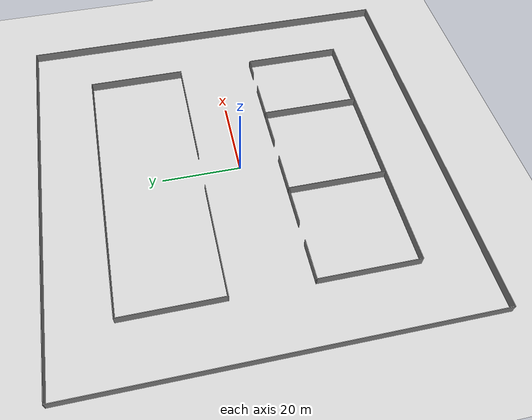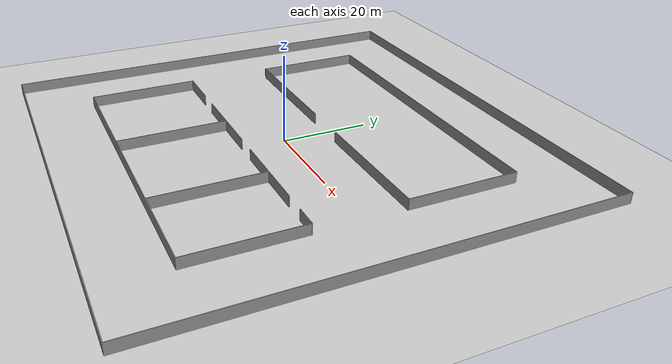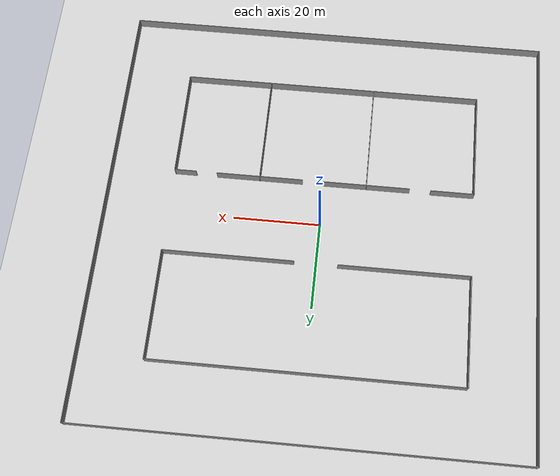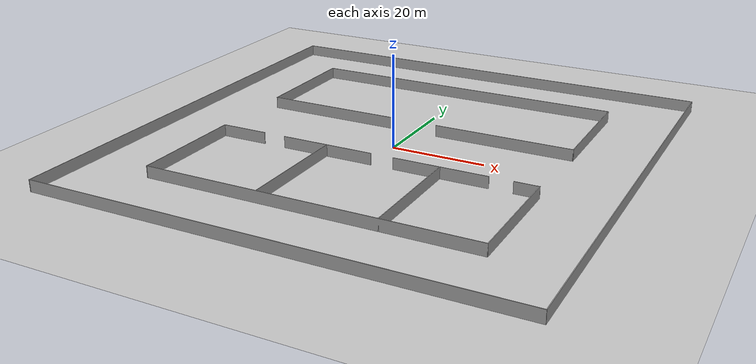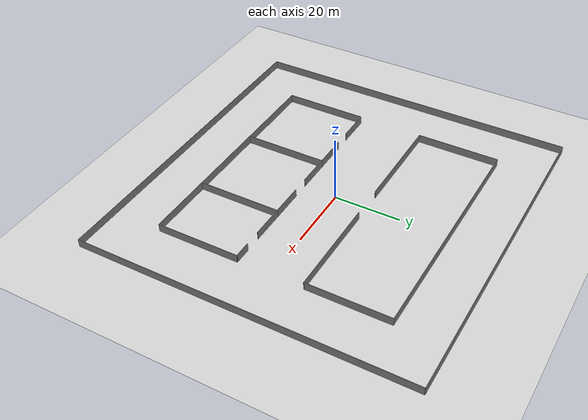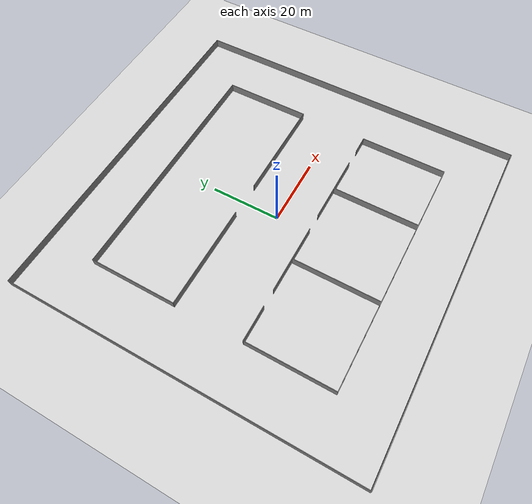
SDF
<sdf version="1.6">
 <world name="default">
  <physics type="ode">
   <max_step_size>0.001000</max_step_size>
   <real_time_factor>1.000000</real_time_factor>
   <real_time_update_rate>1000.000000</real_time_update_rate>
  </physics>
  <light name="sun" type="directional">
   <pose>0 0 10 0 -0 0</pose>
   <diffuse>0.8 0.8 0.8 1</diffuse>
   <specular>0.2 0.2 0.2 1</specular>
   <attenuation>
    <range>1000</range>
    <constant>0.9</constant>
    <linear>0.01</linear>
    <quadratic>0.001</quadratic>
   </attenuation>
   <direction>-0.5 0.1 -0.9</direction>
  </light>
  <model name="ground_plane">
   <static>1</static>
   <link name="link">
    <collision name="collision">
     <geometry><plane><normal>0 0 1</normal><size>100 100</size></plane></geometry>
     <surface>
      <contact><collide_bitmask>65535</collide_bitmask></contact>
      <friction><ode><mu>100</mu><mu2>50</mu2></ode></friction>
     </surface>
    </collision>
    <visual name="visual">
     <cast_shadows>0</cast_shadows>
     <geometry><plane><normal>0 0 1</normal><size>100 100</size></plane></geometry>
     <material>
      <script><uri>file://media/materials/scripts/gazebo.material</uri><name>Gazebo/Grey</name></script>
     </material>
    </visual>
   </link>
  </model>
  <gravity>0 0 -9.8</gravity>
  <magnetic_field>6e-06 2.3e-05 -4.2e-05</magnetic_field>
  <atmosphere type="adiabatic"/>
  <physics name="default_physics" default="0" type="ode">
   <max_step_size>0.001</max_step_size>
   <real_time_factor>1</real_time_factor>
   <real_time_update_rate>1000</real_time_update_rate>
  </physics>
  <scene><ambient>0.4 0.4 0.4 1</ambient><background>0.7 0.7 0.7 1</background><shadows>1</shadows></scene>
  <spherical_coordinates>
   <surface_model>EARTH_WGS84</surface_model>
   <latitude_deg>0</latitude_deg>
   <longitude_deg>0</longitude_deg>
   <elevation>0</elevation>
   <heading_deg>0</heading_deg>
  </spherical_coordinates>
  <model name="floor100x100">
   <link name="Wall_10">
    <collision name="Wall_10_Collision">
     <geometry><box><size>100.15 0.15 2.5</size></box></geometry>
     <pose>0 0 1.25 0 -0 0</pose>
    </collision>
    <visual name="Wall_10_Visual">
     <pose>0 0 1.25 0 -0 0</pose>
     <geometry><box><size>100.15 0.15 2.5</size></box></geometry>
     <material>
      <script><uri>file://media/materials/scripts/gazebo.material</uri><name>Gazebo/Grey</name></script>
      <ambient>1 1 1 1</ambient>
     </material>
     <meta><layer>0</layer></meta>
    </visual>
    <pose>0 -50 0 0 -0 0</pose>
   </link>
   <link name="Wall_11">
    <collision name="Wall_11_Collision">
     <geometry><box><size>100.15 0.15 2.5</size></box></geometry>
     <pose>0 0 1.25 0 -0 0</pose>
    </collision>
    <visual name="Wall_11_Visual">
     <pose>0 0 1.25 0 -0 0</pose>
     <geometry><box><size>100.15 0.15 2.5</size></box></geometry>
     <material>
      <script><uri>file://media/materials/scripts/gazebo.material</uri><name>Gazebo/Grey</name></script>
      <ambient>1 1 1 1</ambient>
     </material>
     <meta><layer>0</layer></meta>
    </visual>
    <pose>50 0 0 0 -0 1.5708</pose>
   </link>
   <link name="Wall_18">
    <collision name="Wall_18_Collision">
     <geometry><box><size>70.15 0.15 2.5</size></box></geometry>
     <pose>0 0 1.25 0 -0 0</pose>
    </collision>
    <visual name="Wall_18_Visual">
     <pose>0 0 1.25 0 -0 0</pose>
     <geometry><box><size>70.15 0.15 2.5</size></box></geometry>
     <material>
      <script><uri>file://media/materials/scripts/gazebo.material</uri><name>Gazebo/Grey</name></script>
      <ambient>1 1 1 1</ambient>
     </material>
     <meta><layer>0</layer></meta>
    </visual>
    <pose>0 35 0 0 -0 0</pose>
   </link>
   <link name="Wall_19">
    <collision name="Wall_19_Collision">
     <geometry><box><size>25.15 0.15 2.5</size></box></geometry>
     <pose>0 0 1.25 0 -0 0</pose>
    </collision>
    <visual name="Wall_19_Visual">
     <pose>0 0 1.25 0 -0 0</pose>
     <geometry><box><size>25.15 0.15 2.5</size></box></geometry>
     <material>
      <script><uri>file://media/materials/scripts/gazebo.material</uri><name>Gazebo/Grey</name></script>
      <ambient>1 1 1 1</ambient>
     </material>
     <meta><layer>0</layer></meta>
    </visual>
    <pose>35 22.5 0 0 -0 -1.5708</pose>
   </link>
   <link name="Wall_21">
    <collision name="Wall_21_Collision">
     <geometry><box><size>25.15 0.15 2.5</size></box></geometry>
     <pose>0 0 1.25 0 -0 0</pose>
    </collision>
    <visual name="Wall_21_Visual">
     <pose>0 0 1.25 0 -0 0</pose>
     <geometry><box><size>25.15 0.15 2.5</size></box></geometry>
     <material>
      <script><uri>file://media/materials/scripts/gazebo.material</uri><name>Gazebo/Grey</name></script>
      <ambient>1 1 1 1</ambient>
     </material>
     <meta><layer>0</layer></meta>
    </visual>
    <pose>-35 22.5 0 0 -0 1.5708</pose>
   </link>
   <link name="Wall_27">
    <collision name="Wall_27_Collision">
     <geometry><box><size>30.15 0.15 2.5</size></box></geometry>
     <pose>0 0 1.25 0 -0 0</pose>
    </collision>
    <visual name="Wall_27_Visual">
     <pose>0 0 1.25 0 -0 0</pose>
     <geometry><box><size>30.15 0.15 2.5</size></box></geometry>
     <material>
      <script><uri>file://media/materials/scripts/gazebo.material</uri><name>Gazebo/Grey</name></script>
      <ambient>1 1 1 1</ambient>
     </material>
     <meta><layer>0</layer></meta>
    </visual>
    <pose>-20 10 0 0 -0 0</pose>
   </link>
   <link name="Wall_29">
    <collision name="Wall_29_Collision">
     <geometry><box><size>30.15 0.15 2.5</size></box></geometry>
     <pose>0 0 1.25 0 -0 0</pose>
    </collision>
    <visual name="Wall_29_Visual">
     <pose>0 0 1.25 0 -0 0</pose>
     <geometry><box><size>30.15 0.15 2.5</size></box></geometry>
     <material>
      <script><uri>file://media/materials/scripts/gazebo.material</uri><name>Gazebo/Grey</name></script>
      <ambient>1 1 1 1</ambient>
     </material>
     <meta><layer>0</layer></meta>
    </visual>
    <pose>20 10 0 0 -0 0</pose>
   </link>
   <link name="Wall_33">
    <collision name="Wall_33_Collision">
     <geometry><box><size>70.15 0.15 2.5</size></box></geometry>
     <pose>0 0 1.25 0 -0 0</pose>
    </collision>
    <visual name="Wall_33_Visual">
     <pose>0 0 1.25 0 -0 0</pose>
     <geometry><box><size>70.15 0.15 2.5</size></box></geometry>
     <material>
      <script><uri>file://media/materials/scripts/gazebo.material</uri><name>Gazebo/Grey</name></script>
      <ambient>1 1 1 1</ambient>
     </material>
     <meta><layer>0</layer></meta>
    </visual>
    <pose>0 -35 0 0 -0 0</pose>
   </link>
   <link name="Wall_34">
    <collision name="Wall_34_Collision">
     <geometry><box><size>25.15 0.15 2.5</size></box></geometry>
     <pose>0 0 1.25 0 -0 0</pose>
    </collision>
    <visual name="Wall_34_Visual">
     <pose>0 0 1.25 0 -0 0</pose>
     <geometry><box><size>25.15 0.15 2.5</size></box></geometry>
     <material>
      <script><uri>file://media/materials/scripts/gazebo.material</uri><name>Gazebo/Grey</name></script>
      <ambient>1 1 1 1</ambient>
     </material>
     <meta><layer>0</layer></meta>
    </visual>
    <pose>35 -22.5 0 0 -0 1.5708</pose>
   </link>
   <link name="Wall_36">
    <collision name="Wall_36_Collision">
     <geometry><box><size>25.15 0.15 2.5</size></box></geometry>
     <pose>0 0 1.25 0 -0 0</pose>
    </collision>
    <visual name="Wall_36_Visual">
     <pose>0 0 1.25 0 -0 0</pose>
     <geometry><box><size>25.15 0.15 2.5</size></box></geometry>
     <material>
      <script><uri>file://media/materials/scripts/gazebo.material</uri><name>Gazebo/Grey</name></script>
      <ambient>1 1 1 1</ambient>
     </material>
     <meta><layer>0</layer></meta>
    </visual>
    <pose>-35 -22.5 0 0 -0 -1.5708</pose>
   </link>
   <link name="Wall_50">
    <collision name="Wall_50_Collision">
     <geometry><box><size>10.15 0.15 2.5</size></box></geometry>
     <pose>0 0 1.25 0 -0 0</pose>
    </collision>
    <visual name="Wall_50_Visual">
     <pose>0 0 1.25 0 -0 0</pose>
     <geometry><box><size>10.15 0.15 2.5</size></box></geometry>
     <material>
      <script><uri>file://media/materials/scripts/gazebo.material</uri><name>Gazebo/Grey</name></script>
      <ambient>1 1 1 1</ambient>
     </material>
     <meta><layer>0</layer></meta>
    </visual>
    <pose>-30 -10 0 0 -0 0</pose>
   </link>
   <link name="Wall_52">
    <collision name="Wall_52_Collision">
     <geometry><box><size>10.15 0.15 2.5</size></box></geometry>
     <pose>0 0 1.25 0 -0 0</pose>
    </collision>
    <visual name="Wall_52_Visual">
     <pose>0 0 1.25 0 -0 0</pose>
     <geometry><box><size>10.15 0.15 2.5</size></box></geometry>
     <material>
      <script><uri>file://media/materials/scripts/gazebo.material</uri><name>Gazebo/Grey</name></script>
      <ambient>1 1 1 1</ambient>
     </material>
     <meta><layer>0</layer></meta>
    </visual>
    <pose>-15 -10 0 0 -0 0</pose>
   </link>
   <link name="Wall_53">
    <collision name="Wall_53_Collision">
     <geometry><box><size>25.15 0.15 2.5</size></box></geometry>
     <pose>0 0 1.25 0 -0 0</pose>
    </collision>
    <visual name="Wall_53_Visual">
     <pose>0 0 1.25 0 -0 0</pose>
     <geometry><box><size>25.15 0.15 2.5</size></box></geometry>
     <material>
      <script><uri>file://media/materials/scripts/gazebo.material</uri><name>Gazebo/Grey</name></script>
      <ambient>1 1 1 1</ambient>
     </material>
     <meta><layer>0</layer></meta>
    </visual>
    <pose>-10 -22.5 0 0 -0 -1.5708</pose>
   </link>
   <link name="Wall_55">
    <collision name="Wall_55_Collision">
     <geometry><box><size>10.15 0.15 2.5</size></box></geometry>
     <pose>0 0 1.25 0 -0 0</pose>
    </collision>
    <visual name="Wall_55_Visual">
     <pose>0 0 1.25 0 -0 0</pose>
     <geometry><box><size>10.15 0.15 2.5</size></box></geometry>
     <material>
      <script><uri>file://media/materials/scripts/gazebo.material</uri><name>Gazebo/Grey</name></script>
      <ambient>1 1 1 1</ambient>
     </material>
     <meta><layer>0</layer></meta>
    </visual>
    <pose>-5 -10 0 0 -0 0</pose>
   </link>
   <link name="Wall_57">
    <collision name="Wall_57_Collision">
     <geometry><box><size>10.15 0.15 2.5</size></box></geometry>
     <pose>0 0 1.25 0 -0 0</pose>
    </collision>
    <visual name="Wall_57_Visual">
     <pose>0 0 1.25 0 -0 0</pose>
     <geometry><box><size>10.15 0.15 2.5</size></box></geometry>
     <material>
      <script><uri>file://media/materials/scripts/gazebo.material</uri><name>Gazebo/Grey</name></script>
      <ambient>1 1 1 1</ambient>
     </material>
     <meta><layer>0</layer></meta>
    </visual>
    <pose>10 -10 0 0 -0 0</pose>
   </link>
   <link name="Wall_58">
    <collision name="Wall_58_Collision">
     <geometry><box><size>25.15 0.15 2.5</size></box></geometry>
     <pose>0 0 1.25 0 -0 0</pose>
    </collision>
    <visual name="Wall_58_Visual">
     <pose>0 0 1.25 0 -0 0</pose>
     <geometry><box><size>25.15 0.15 2.5</size></box></geometry>
     <material>
      <script><uri>file://media/materials/scripts/gazebo.material</uri><name>Gazebo/Grey</name></script>
      <ambient>1 1 1 1</ambient>
     </material>
     <meta><layer>0</layer></meta>
    </visual>
    <pose>15 -22.5 0 0 -0 -1.5708</pose>
   </link>
   <link name="Wall_60">
    <collision name="Wall_60_Collision">
     <geometry><box><size>10.15 0.15 2.5</size></box></geometry>
     <pose>0 0 1.25 0 -0 0</pose>
    </collision>
    <visual name="Wall_60_Visual">
     <pose>0 0 1.25 0 -0 0</pose>
     <geometry><box><size>10.15 0.15 2.5</size></box></geometry>
     <material>
      <script><uri>file://media/materials/scripts/gazebo.material</uri><name>Gazebo/Grey</name></script>
      <ambient>1 1 1 1</ambient>
     </material>
     <meta><layer>0</layer></meta>
    </visual>
    <pose>20 -10 0 0 -0 0</pose>
   </link>
   <link name="Wall_62">
    <collision name="Wall_62_Collision">
     <geometry><box><size>5.15 0.15 2.5</size></box></geometry>
     <pose>0 0 1.25 0 -0 0</pose>
    </collision>
    <visual name="Wall_62_Visual">
     <pose>0 0 1.25 0 -0 0</pose>
     <geometry><box><size>5.15 0.15 2.5</size></box></geometry>
     <material>
      <script><uri>file://media/materials/scripts/gazebo.material</uri><name>Gazebo/Grey</name></script>
      <ambient>1 1 1 1</ambient>
     </material>
     <meta><layer>0</layer></meta>
    </visual>
    <pose>32.5 -10 0 0 -0 0</pose>
   </link>
   <link name="Wall_8">
    <collision name="Wall_8_Collision">
     <geometry><box><size>100.15 0.15 2.5</size></box></geometry>
     <pose>0 0 1.25 0 -0 0</pose>
    </collision>
    <visual name="Wall_8_Visual">
     <pose>0 0 1.25 0 -0 0</pose>
     <geometry><box><size>100.15 0.15 2.5</size></box></geometry>
     <material>
      <script><uri>file://media/materials/scripts/gazebo.material</uri><name>Gazebo/Grey</name></script>
      <ambient>1 1 1 1</ambient>
     </material>
     <meta><layer>0</layer></meta>
    </visual>
    <pose>0 50 0 0 -0 3.14159</pose>
   </link>
   <link name="Wall_9">
    <collision name="Wall_9_Collision">
     <geometry><box><size>100.15 0.15 2.5</size></box></geometry>
     <pose>0 0 1.25 0 -0 0</pose>
    </collision>
    <visual name="Wall_9_Visual">
     <pose>0 0 1.25 0 -0 0</pose>
     <geometry><box><size>100.15 0.15 2.5</size></box></geometry>
     <material>
      <script><uri>file://media/materials/scripts/gazebo.material</uri><name>Gazebo/Grey</name></script>
      <ambient>1 1 1 1</ambient>
     </material>
     <meta><layer>0</layer></meta>
    </visual>
    <pose>-50 0 0 0 -0 -1.5708</pose>
   </link>
   <static>1</static>
  </model>
  <plugin name="bot_factory" filename="./build/libbot_factory.so"/>
 </world>
</sdf>
